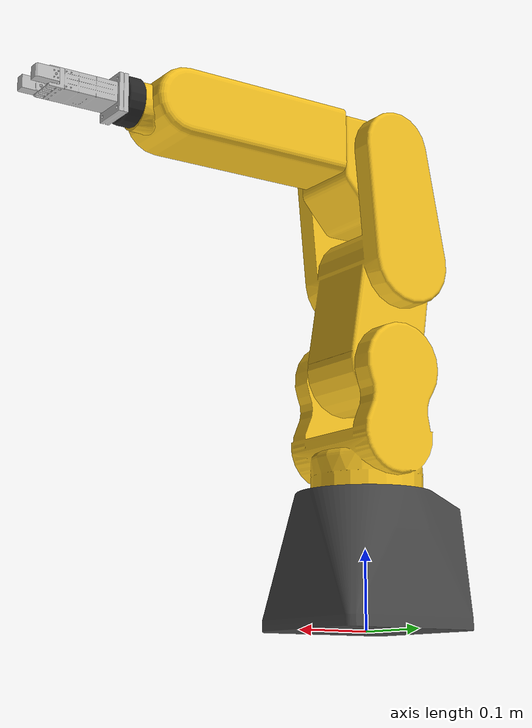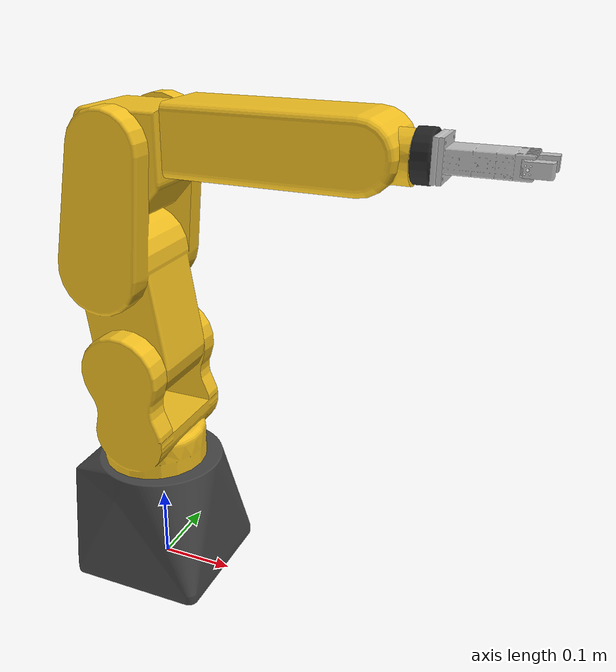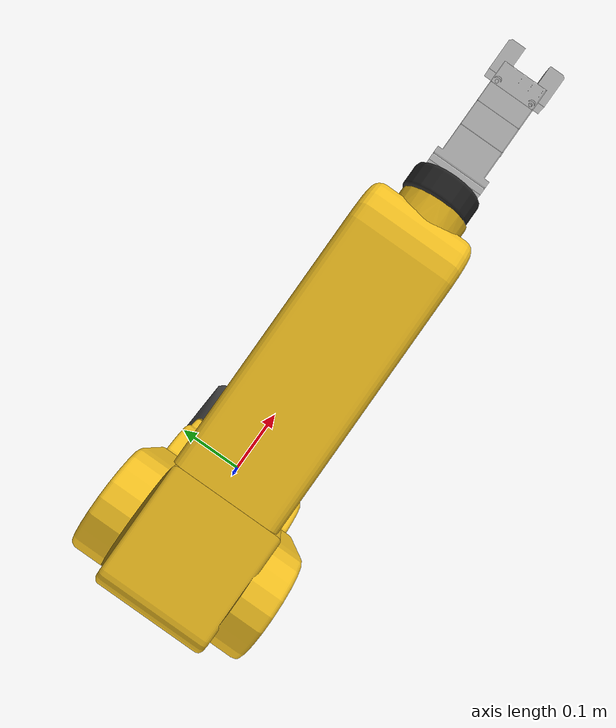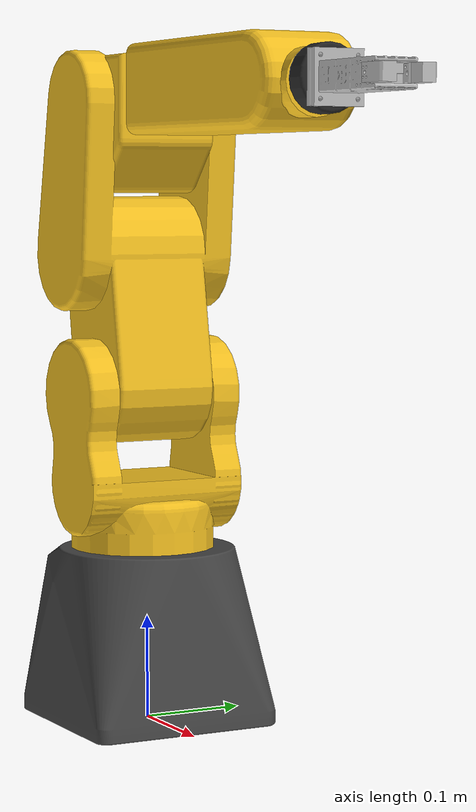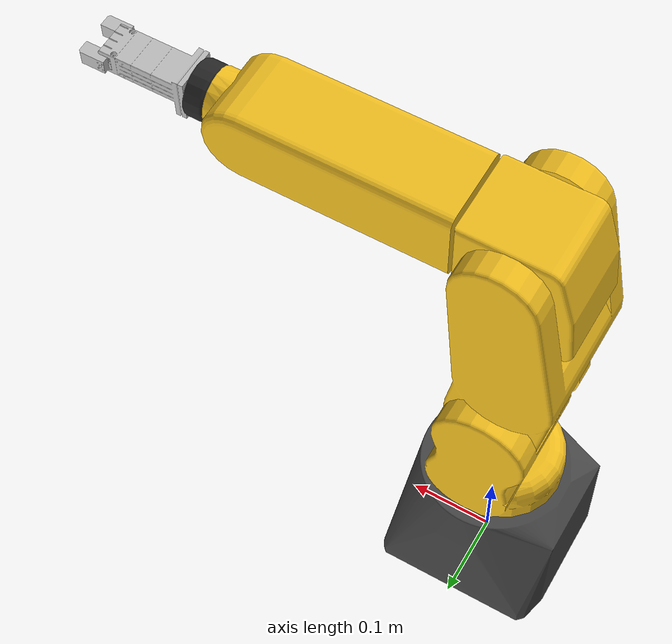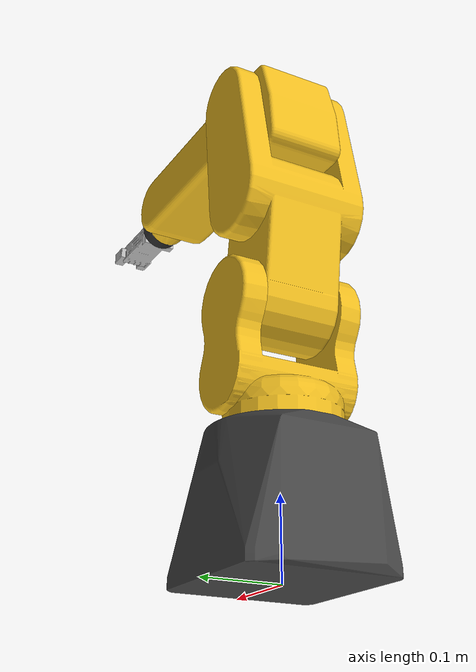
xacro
<?xml version="1.0" encoding="utf-8" ?>
<!-- |    This document was autogenerated by xacro from /home/rok/ros/rosinljubljana/fanuc_ros/src/fanuc_lrmate200id_support/urdf/fanuc_lrmate200id.xacro | -->
<!-- |    EDITING THIS FILE BY HAND IS NOT RECOMMENDED                                 | -->
<robot name="fanuc_lrmate200id">
    <!-- links: main serial chain -->
    <link name="base_link">
        <visual>
            <origin rpy="0 0 0" xyz="0 0 0" />
            <geometry>
                <mesh filename="package://fanuc_lrmate200id_support/meshes/lrmate200id/visual/base_link.stl" />
            </geometry>
            <material name="">
                <color rgba="0.278431372549 0.278431372549 0.278431372549 1.0" />
            </material>
        </visual>
        <collision>
            <origin rpy="0 0 0" xyz="0 0 0" />
            <geometry>
                <mesh filename="package://fanuc_lrmate200id_support/meshes/lrmate200id/collision/base_link.stl" />
            </geometry>
        </collision>

        <inertial>
            <mass value="4" />
            <origin rpy="0 0 0" xyz="0 0 0" />
            <inertia ixx="0.0216667" ixy="0" ixz="0" iyy="0.0216667" iyz="0" izz="0.0240667" />
        </inertial>

    </link>
    <link name="link_1">
        <visual>
            <origin rpy="0 0 0" xyz="0 0 0" />
            <geometry>
                <mesh filename="package://fanuc_lrmate200id_support/meshes/lrmate200id/visual/link_1.stl" />
            </geometry>
            <material name="">
                <color rgba="0.96 0.76 0.13 1.0" />
            </material>
        </visual>
        <collision>
            <origin rpy="0 0 0" xyz="0 0 0" />
            <geometry>
                <mesh filename="package://fanuc_lrmate200id_support/meshes/lrmate200id/collision/link_1.stl" />
            </geometry>
        </collision>

        <inertial>
            <mass value="4" />
            <origin rpy="0 0 0" xyz="0 0 0" />
            <inertia ixx="0.0322667" ixy="0" ixz="0" iyy="0.0226667" iyz="0" izz="0.0226667" />
        </inertial>

    </link>
    <link name="link_2">
        <visual>
            <origin rpy="0 0 0" xyz="0 0 0" />
            <geometry>
                <mesh filename="package://fanuc_lrmate200id_support/meshes/lrmate200id/visual/link_2.stl" />
            </geometry>
            <material name="">
                <color rgba="0.96 0.76 0.13 1.0" />
            </material>
        </visual>
        <collision>
            <origin rpy="0 0 0" xyz="0 0 0" />
            <geometry>
                <mesh filename="package://fanuc_lrmate200id_support/meshes/lrmate200id/collision/link_2.stl" />
            </geometry>
        </collision>

        <inertial>
            <mass value="5" />
            <origin rpy="0 0 0" xyz="0 0 0" />
            <inertia ixx="0.0973333" ixy="0" ixz="0" iyy="0.0888333" iyz="0" izz="0.0248333" />
        </inertial>

    </link>
    <link name="link_3">
        <visual>
            <origin rpy="0 0 0" xyz="0 0 0" />
            <geometry>
                <mesh filename="package://fanuc_lrmate200id_support/meshes/lrmate200id/visual/link_3.stl" />
            </geometry>
            <material name="">
                <color rgba="0.96 0.76 0.13 1.0" />
            </material>
        </visual>
        <collision>
            <origin rpy="0 0 0" xyz="0 0 0" />
            <geometry>
                <mesh filename="package://fanuc_lrmate200id_support/meshes/lrmate200id/collision/link_3.stl" />
            </geometry>
        </collision>

        <inertial>
            <mass value="4" />
            <origin rpy="0 0 0" xyz="0 0 0" />
            <inertia ixx="0.0104333" ixy="0" ixz="0" iyy="0.0121667" iyz="0" izz="0.0113333" />
        </inertial>

    </link>
    <link name="link_4">
        <visual>
            <origin rpy="0 0 0" xyz="0 0 0" />
            <geometry>
                <mesh filename="package://fanuc_lrmate200id_support/meshes/lrmate200id/visual/link_4.stl" />
            </geometry>
            <material name="">
                <color rgba="0.96 0.76 0.13 1.0" />
            </material>
        </visual>
        <collision>
            <origin rpy="0 0 0" xyz="0 0 0" />
            <geometry>
                <mesh filename="package://fanuc_lrmate200id_support/meshes/lrmate200id/collision/link_4.stl" />
            </geometry>
        </collision>

        <inertial>
            <mass value="5" />
            <origin rpy="0 0 0" xyz="0 0 0" />
            <inertia ixx="0.00833333" ixy="0" ixz="0" iyy="0.0368333" iyz="0" izz="0.0368333" />
        </inertial>

    </link>
    <link name="link_5">
        <visual>
            <origin rpy="0 0 0" xyz="0 0 0" />
            <geometry>
                <mesh filename="package://fanuc_lrmate200id_support/meshes/lrmate200id/visual/link_5.stl" />
            </geometry>
            <material name="">
                <color rgba="0.96 0.76 0.13 1.0" />
            </material>
        </visual>
        <collision>
            <origin rpy="0 0 0" xyz="0 0 0" />
            <geometry>
                <mesh filename="package://fanuc_lrmate200id_support/meshes/lrmate200id/collision/link_5.stl" />
            </geometry>
        </collision>

        <inertial>
            <mass value="1.5" />
            <origin rpy="0 0 0" xyz="0 0 0" />
            <inertia ixx="0.0018125" ixy="0" ixz="0" iyy="0.0023125" iyz="0" izz="0.002525" />
        </inertial>

    </link>
    <link name="link_6">
        <visual>
            <origin rpy="0 0 0" xyz="-0.057 0 0" />
            <geometry>
                <mesh filename="package://fanuc_lrmate200id_support/meshes/lrmate200id/visual/link_6.stl" />
            </geometry>
            <material name="">
                <color rgba="0.15 0.15 0.15 1.0" />
            </material>
        </visual>
        <collision>
            <origin rpy="0 0 0" xyz="0 0 0" />
            <geometry>
                <mesh filename="package://fanuc_lrmate200id_support/meshes/lrmate200id/collision/link_6.stl" />
            </geometry>
        </collision>

        <inertial>
            <mass value="0.25" />
            <origin rpy="0 0 0" xyz="0 0 0" />
            <inertia ixx="6.66666e-05" ixy="0" ixz="0" iyy="3.54167e-05" iyz="0" izz="3.54167e-05" />
        </inertial>

    </link>
    <link name="flange">
        <visual>
            <origin rpy="0 0 0" xyz="0 0 0" />
            <geometry>
                <mesh filename="package://fanuc_lrmate200id_support/meshes/lrmate200id/visual/gripper.stl" scale="0.001 0.001 0.001" />
            </geometry>
            <material name="">
                <color rgba="0.75 0.75 0.75 1.0" />
            </material>
        </visual>
        <collision>
            <origin rpy="0 0 0" xyz="0 0 0" />
            <geometry>
                <mesh filename="package://fanuc_lrmate200id_support/meshes/lrmate200id/collision/gripper.stl" scale="0.001 0.001 0.001" />
            </geometry>
        </collision>

        <inertial>
            <mass value="0.1" />
            <origin rpy="0 0 0" xyz="0 0 0" />
            <inertia ixx="6e-06" ixy="0" ixz="0" iyy="6e-06" iyz="0" izz="6e-06" />
        </inertial>

    </link>
    <link name="left_finger">
        <visual>
            <origin rpy="0 0 0" xyz="0 0 0" />
            <geometry>
                <mesh filename="package://fanuc_lrmate200id_support/meshes/lrmate200id/visual/left_finger.stl" scale="0.001 0.001 0.001" />
            </geometry>
            <material name="">
                <color rgba="0.75 0.75 0.75 1.0" />
            </material>
        </visual>
        <collision>
            <origin rpy="0 0 0" xyz="0 0 0" />
            <geometry>
                <mesh filename="package://fanuc_lrmate200id_support/meshes/lrmate200id/collision/left_finger.stl" scale="0.001 0.001 0.001" />
            </geometry>
        </collision>

        <inertial>
            <mass value="0.01" />
            <origin rpy="0 0 0" xyz="0 0 0" />
            <inertia ixx="6e-06" ixy="0" ixz="0" iyy="6e-06" iyz="0" izz="6e-06" />
        </inertial>

    </link>
    <link name="right_finger">
        <visual>
            <origin rpy="0 0 0" xyz="0 0 0" />
            <geometry>
                <mesh filename="package://fanuc_lrmate200id_support/meshes/lrmate200id/visual/right_finger.stl" scale="0.001 0.001 0.001" />
            </geometry>
            <material name="">
                <color rgba="0.75 0.75 0.75 1.0" />
            </material>
        </visual>
        <collision>
            <origin rpy="0 0 0" xyz="0 0 0" />
            <geometry>
                <mesh filename="package://fanuc_lrmate200id_support/meshes/lrmate200id/collision/right_finger.stl" scale="0.001 0.001 0.001" />
            </geometry>
        </collision>

        <inertial>
            <mass value="0.01" />
            <origin rpy="0 0 0" xyz="0 0 0" />
            <inertia ixx="6e-06" ixy="0" ixz="0" iyy="6e-06" iyz="0" izz="6e-06" />
        </inertial>

    </link>
    <!-- joints: main serial chain -->
    <joint name="joint_1" type="revolute">
        <origin rpy="0 0 0" xyz="-0.006 -0.002 0.290" />
        <parent link="base_link" />
        <child link="link_1" />
        <axis xyz="0 0 1" />
        <dynamics damping="1.0" />
        <limit effort="100" lower="-2.965" upper="2.965" velocity="7.85" />
    </joint>
    <joint name="joint_2" type="revolute">
        <origin rpy="0 0 0" xyz="0 0 0.040" />
        <parent link="link_1" />
        <child link="link_2" />
        <axis xyz="0 1 0" />
        <dynamics damping="1.0" />
        <limit effort="100" lower="-1.745329" upper="2.530727" velocity="6.63" />
    </joint>
    <joint name="joint_3" type="revolute">
        <origin rpy="0 0 0" xyz="0.0 0 0.26" />
        <parent link="link_2" />
        <child link="link_3" />
        <axis xyz="0 -1 0" />
        <dynamics damping="1.0" />
        <limit effort="100" lower="-2.450966" upper="4.886922" velocity="9.08" />
    </joint>
    <joint name="joint_4" type="revolute">
        <origin rpy="0 0 0" xyz="0.064 0 0.02" />
        <parent link="link_3" />
        <child link="link_4" />
        <axis xyz="-1 0 0" />
        <dynamics damping="1.0" />
        <limit effort="100" lower="-3.315" upper="3.315" velocity="9.60" />
    </joint>
    <joint name="joint_5" type="revolute">
        <origin rpy="0 0 0" xyz="0.226 0 0" />
        <parent link="link_4" />
        <child link="link_5" />
        <axis xyz="0 -1 0" />
        <dynamics damping="1.0" />
        <limit effort="100" lower="-2.18" upper="2.18" velocity="9.51" />
    </joint>
    <joint name="joint_6" type="revolute">
        <origin rpy="0 0 0" xyz="0.070 0 0" />
        <parent link="link_5" />
        <child link="link_6" />
        <axis xyz="-1 0 0" />
        <dynamics damping="1.0" />
        <limit effort="100" lower="-6.285" upper="6.285" velocity="17.45" />
    </joint>
    <!-- WORLD LINK -->
    <link name="world" />
    <joint name="world" type="fixed">
        <origin rpy="0 0 0" xyz="0 0 0" />
        <parent link="world" />
        <child link="base_link" />
    </joint>
    <!-- ROS-Industrial 'flange' frame: attachment point for EEF models -->
    <joint name="joint_6-flange" type="fixed">
        <origin rpy="0 0 0" xyz="0.0 0.0 0.0" />
        <parent link="link_6" />
        <child link="flange" />
    </joint>
    <joint name="finger_joint1" type="prismatic">
        <parent link="flange" />
        <child link="left_finger" />
        <origin rpy="0 0 0" xyz="0.088 0 0" />
        <axis xyz="0 -1 0" />
        <dynamics damping="1.0" />
        <limit effort="10" lower="0.0" upper="0.015" velocity="0.2" />
    </joint>
    <joint name="finger_joint2" type="prismatic">
        <parent link="flange" />
        <child link="right_finger" />
        <origin rpy="0 0 0" xyz="0.088 0 0" />
        <axis xyz="0 1 0" />
        <dynamics damping="1.0" />
        <limit effort="10" lower="0.0" upper="0.015" velocity="0.2" />
        <mimic joint="finger_joint1" />
    </joint>
    <!-- MATERIALS GAZEBO -->
    <gazebo reference="base_link">
        <material>Gazebo/Grey</material>
    </gazebo>
    <gazebo reference="link_1">
        <material>Gazebo/Yellow</material>
    </gazebo>
    <gazebo reference="link_2">
        <material>Gazebo/Yellow</material>
    </gazebo>
    <gazebo reference="link_3">
        <material>Gazebo/Yellow</material>
    </gazebo>
    <gazebo reference="link_4">
        <material>Gazebo/Yellow</material>
    </gazebo>
    <gazebo reference="link_5">
        <material>Gazebo/Yellow</material>
    </gazebo>
    <gazebo reference="link_6">
        <material>Gazebo/Grey</material>
    </gazebo>

    <transmission name="trans_joint_1">
        <type>transmission_interface/SimpleTransmission</type>
        <joint name="joint_1">
            <hardwareInterface>hardware_interface/PositionJointInterface</hardwareInterface>
        </joint>
        <actuator name="joint_1_motor">
            <hardwareInterface>hardware_interface/PositionJointInterface</hardwareInterface>
            <mechanicalReduction>1</mechanicalReduction>
        </actuator>
    </transmission>
    <transmission name="trans_joint_2">
        <type>transmission_interface/SimpleTransmission</type>
        <joint name="joint_2">
            <hardwareInterface>hardware_interface/PositionJointInterface</hardwareInterface>
        </joint>
        <actuator name="joint_2_motor">
            <hardwareInterface>hardware_interface/PositionJointInterface</hardwareInterface>
            <mechanicalReduction>1</mechanicalReduction>
        </actuator>
    </transmission>
    <transmission name="trans_joint_3">
        <type>transmission_interface/SimpleTransmission</type>
        <joint name="joint_3">
            <hardwareInterface>hardware_interface/PositionJointInterface</hardwareInterface>
        </joint>
        <actuator name="joint_3_motor">
            <hardwareInterface>hardware_interface/PositionJointInterface</hardwareInterface>
            <mechanicalReduction>1</mechanicalReduction>
        </actuator>
    </transmission>
    <transmission name="trans_joint_4">
        <type>transmission_interface/SimpleTransmission</type>
        <joint name="joint_4">
            <hardwareInterface>hardware_interface/PositionJointInterface</hardwareInterface>
        </joint>
        <actuator name="joint_4_motor">
            <hardwareInterface>hardware_interface/PositionJointInterface</hardwareInterface>
            <mechanicalReduction>1</mechanicalReduction>
        </actuator>
    </transmission>
    <transmission name="trans_joint_5">
        <type>transmission_interface/SimpleTransmission</type>
        <joint name="joint_5">
            <hardwareInterface>hardware_interface/PositionJointInterface</hardwareInterface>
        </joint>
        <actuator name="joint_5_motor">
            <hardwareInterface>hardware_interface/PositionJointInterface</hardwareInterface>
            <mechanicalReduction>1</mechanicalReduction>
        </actuator>
    </transmission>
    <transmission name="trans_joint_6">
        <type>transmission_interface/SimpleTransmission</type>
        <joint name="joint_6">
            <hardwareInterface>hardware_interface/PositionJointInterface</hardwareInterface>
        </joint>
        <actuator name="joint_6_motor">
            <hardwareInterface>hardware_interface/PositionJointInterface</hardwareInterface>
            <mechanicalReduction>1</mechanicalReduction>
        </actuator>
    </transmission>
    <transmission name="trans_finger_joint1">
        <type>transmission_interface/SimpleTransmission</type>
        <joint name="finger_joint1">
            <hardwareInterface>hardware_interface/EffortJointInterface</hardwareInterface>
        </joint>
        <actuator name="finger_joint1_motor">
            <hardwareInterface>hardware_interface/EffortJointInterface</hardwareInterface>
            <mechanicalReduction>1</mechanicalReduction>
        </actuator>
    </transmission>
    <transmission name="trans_finger_joint2">
        <type>transmission_interface/SimpleTransmission</type>
        <joint name="finger_joint2">
            <hardwareInterface>hardware_interface/EffortJointInterface</hardwareInterface>
        </joint>
        <actuator name="finger_joint2_motor">
            <hardwareInterface>hardware_interface/EffortJointInterface</hardwareInterface>
            <mechanicalReduction>1</mechanicalReduction>
        </actuator>
    </transmission>
    <gazebo>
        <plugin name="gazebo_ros_control" filename="libgazebo_ros_control.so">
            <robotNamespace>/</robotNamespace>
        </plugin>
    </gazebo>
    <gazebo reference="{prefix}link1">
        <mu1>0.61</mu1>
        <mu2>0.61</mu2>
    </gazebo>

    <gazebo reference="{prefix}link2">
        <mu1>0.61</mu1>
        <mu2>0.61</mu2>
    </gazebo>
    <gazebo reference="{prefix}link3">
        <mu1>0.61</mu1>
        <mu2>0.61</mu2>
    </gazebo>
    <gazebo reference="{prefix}link4">
        <mu1>0.61</mu1>
        <mu2>0.61</mu2>
    </gazebo>
    <gazebo reference="{prefix}link5">
        <mu1>0.61</mu1>
        <mu2>0.61</mu2>
    </gazebo>
    <gazebo reference="{prefix}link6">
        <mu1>0.61</mu1>
        <mu2>0.61</mu2>
    </gazebo>
    <gazebo reference="{prefix}left_finger">
        <mu1>1.00</mu1>
        <mu2>1.00</mu2>
    </gazebo>
    <gazebo reference="{prefix}right_finger">
        <mu1>1.00</mu1>
        <mu2>1.00</mu2>
    </gazebo>
</robot>
